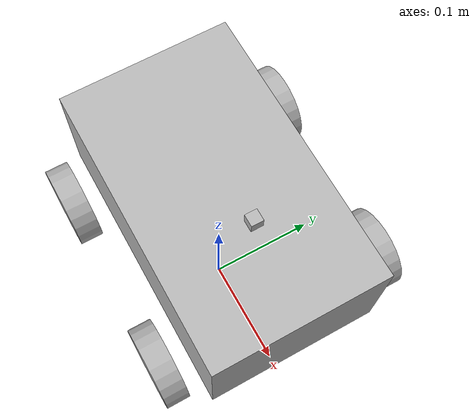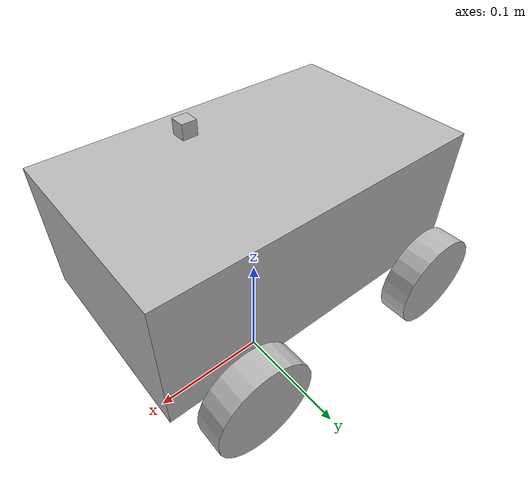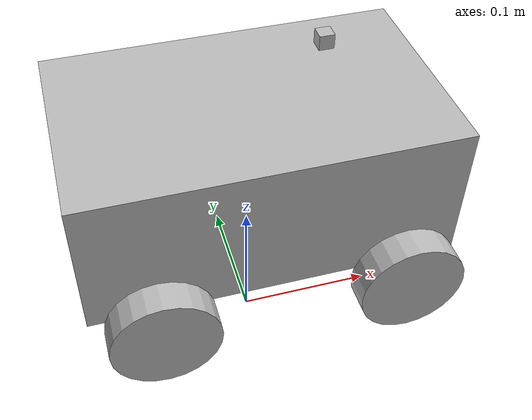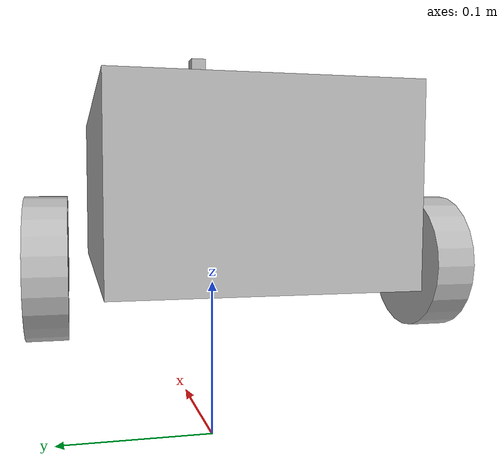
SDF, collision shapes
<?xml version="1.0" ?>
<sdf version="1.5">
  <model name="ugv_diff">

    <link name="base_link">
      <pose>0 0 0.16 0 0 0</pose>
      <gravity>1</gravity>
      <inertial>
        <mass>2</mass>
        <inertia>
          <ixx>0.028819942</ixx>
          <iyy>0.047333716</iyy>
          <izz>0.054201740</izz>
          <ixy>0</ixy>
          <ixz>0</ixz>
          <iyz>0</iyz>
        </inertia>
      </inertial>
      <collision name="collision">
        <pose>0 0 0 0 0 0</pose>
        <geometry>
          <box>
            <size>0.25 0.15 0.1</size>
          </box>
        </geometry>
      </collision>
      <visual name="visual">
        <pose>0.045 0 -0.05 1.57 0 0</pose>
        <geometry>
          <mesh>
            <uri>model://ugv_mac/meshes/body.dae</uri>
          </mesh>
        </geometry>
      </visual>
    </link>

    <link name="right_front_wheel">
      <pose>0.08 -0.1 0.12 1.57 0 0</pose>
      <gravity>1</gravity>
      <inertial>
        <mass>0.3844</mass>
        <inertia>
          <ixx>0.000324824</ixx>
          <iyy>0.000480000</iyy>
          <izz>0.000324824</izz>
          <ixy>0</ixy>
          <ixz>0</ixz>
          <iyz>0</iyz>
        </inertia>
      </inertial>
      <collision name='right_front_wheel_collision'>
        <pose>0 0 0 0 0 0</pose>
        <geometry>
          <cylinder>
            <length>0.02</length>
            <radius>0.035</radius>
          </cylinder>
        </geometry>
        <surface>
          <friction>
            <ode>
              <mu>0.05</mu>
              <mu2>0.05</mu2>
              <slip1>0.0</slip1>
              <slip2>0.0</slip2>
            </ode>
          </friction>
        </surface>
      </collision>
      <visual name="visual">
        <pose>-0.035 0.015 -0.1 3.14 0 0</pose>
        <geometry>
          <mesh>
            <uri>model://ugv_mac/meshes/front.dae</uri>
          </mesh>
        </geometry>
      </visual>
    </link>

    <link name="right_after_wheel">
      <pose>-0.08 -0.1 0.12 1.57 0 0</pose>
      <gravity>1</gravity>
      <inertial>
        <mass>0.3844</mass>
        <inertia>
          <ixx>0.000324824</ixx>
          <iyy>0.000480000</iyy>
          <izz>0.000324824</izz>
          <ixy>0</ixy>
          <ixz>0</ixz>
          <iyz>0</iyz>
        </inertia>
      </inertial>
      <collision name='right_after_wheel_collision'>
        <pose>0 0 0 0 0 0</pose>
        <geometry>
          <cylinder>
            <length>0.02</length>
            <radius>0.035</radius>
          </cylinder>
        </geometry>
        <surface>
          <friction>
            <ode>
              <mu>0.05</mu>
              <mu2>0.05</mu2>
              <slip1>0.0</slip1>
              <slip2>0.0</slip2>
            </ode>
          </friction>
        </surface>
      </collision>
      <visual name="visual">
        <pose>-0.035 0.015 -0.1 3.14 0 0</pose>
        <geometry>
          <mesh>
            <uri>model://ugv_mac/meshes/front.dae</uri>
          </mesh>
        </geometry>
      </visual>
    </link>

    <link name="left_front_wheel">
      <pose>0.08 0.1 0.12 1.57 0 0</pose>
      <gravity>1</gravity>
      <inertial>
        <mass>0.3844</mass>
        <inertia>
          <ixx>0.000324824</ixx>
          <iyy>0.000480000</iyy>
          <izz>0.000324824</izz>
          <ixy>0</ixy>
          <ixz>0</ixz>
          <iyz>0</iyz>
        </inertia>
      </inertial>
      <collision name='left_front_wheel_collision'>
        <pose>0 0 0 0 0 0</pose>
        <geometry>
          <cylinder>
            <length>0.02</length>
            <radius>0.035</radius>
          </cylinder>
        </geometry>
        <surface>
          <friction>
            <ode>
              <mu>0.05</mu>
              <mu2>0.05</mu2>
              <slip1>0.0</slip1>
              <slip2>0.0</slip2>
            </ode>
          </friction>
        </surface>
      </collision>
      <visual name="visual">
        <pose>-0.035 -0.015 0.1 0 0 0</pose>
        <geometry>
          <mesh>
            <uri>model://ugv_mac/meshes/front.dae</uri>
          </mesh>
        </geometry>
      </visual>
    </link>

    <link name="left_after_wheel">
      <pose>-0.08 0.1 0.12 1.57 0 0</pose>
      <gravity>1</gravity>
      <inertial>
        <mass>0.3844</mass>
        <inertia>
          <ixx>0.000324824</ixx>
          <iyy>0.000480000</iyy>
          <izz>0.000324824</izz>
          <ixy>0</ixy>
          <ixz>0</ixz>
          <iyz>0</iyz>
        </inertia>
      </inertial>
      <collision name='left_after_wheel_collision'>
        <pose>0 0 0 0 0 0</pose>
        <geometry>
          <cylinder>
            <length>0.02</length>
            <radius>0.035</radius>
          </cylinder>
        </geometry>
        <surface>
          <friction>
            <ode>
              <mu>0.05</mu>
              <mu2>0.05</mu2>
              <slip1>0.0</slip1>
              <slip2>0.0</slip2>
            </ode>
          </friction>
        </surface>
      </collision>
      <visual name="visual">
        <pose>-0.035 -0.015 0.1 0 0 0</pose>
        <geometry>
          <mesh>
            <uri>model://ugv_mac/meshes/front.dae</uri>
          </mesh>
        </geometry>
      </visual>
    </link>

    <joint type="revolute" name="right_front_wheel_joint">
      <child>right_front_wheel</child>
      <parent>base_link</parent>
      <axis>
        <xyz>0 1 0</xyz>
        <limit>
          <lower>-1e+16</lower>
          <upper>1e+16</upper>
        </limit>
        <dynamics>
          <spring_reference>0</spring_reference>
          <spring_stiffness>0</spring_stiffness>
        </dynamics>
        <use_parent_model_frame>1</use_parent_model_frame>
      </axis>
    </joint>

    <joint type="revolute" name="right_after_wheel_joint">
      <child>right_after_wheel</child>
      <parent>base_link</parent>
      <axis>
        <xyz>0 1 0</xyz>
        <limit>
          <lower>-1e+16</lower>
          <upper>1e+16</upper>
        </limit>
        <dynamics>
          <spring_reference>0</spring_reference>
          <spring_stiffness>0</spring_stiffness>
        </dynamics>
        <use_parent_model_frame>1</use_parent_model_frame>
      </axis>
    </joint>

    <joint type="revolute" name="left_front_wheel_joint">
      <child>left_front_wheel</child>
      <parent>base_link</parent>
      <axis>
        <xyz>0 1 0</xyz>
        <limit>
          <lower>-1e+16</lower>
          <upper>1e+16</upper>
        </limit>
        <dynamics>
          <spring_reference>0</spring_reference>
          <spring_stiffness>0</spring_stiffness>
        </dynamics>
        <use_parent_model_frame>1</use_parent_model_frame>
      </axis>
    </joint>

    <joint type="revolute" name="left_after_wheel_joint">
      <child>left_after_wheel</child>
      <parent>base_link</parent>
      <axis>
        <xyz>0 1 0</xyz>
        <limit>
          <lower>-1e+16</lower>
          <upper>1e+16</upper>
        </limit>
        <dynamics>
          <spring_reference>0</spring_reference>
          <spring_stiffness>0</spring_stiffness>
        </dynamics>
        <use_parent_model_frame>1</use_parent_model_frame>
      </axis>
    </joint>

  <plugin name="skid_steer_drive_controller" filename="libgazebo_ros_skid_steer_drive.so">
      <alwaysOn>true</alwaysOn>
      <updateRate>100.0</updateRate>
      <leftFrontJoint>left_front_wheel_joint</leftFrontJoint>
      <rightFrontJoint>right_front_wheel_joint</rightFrontJoint>
      <leftRearJoint>left_after_wheel_joint</leftRearJoint>
      <rightRearJoint>right_after_wheel_joint</rightRearJoint>
      <wheelSeparation>0.2</wheelSeparation>
      <wheelDiameter>0.07</wheelDiameter>
      <torque>50</torque>
      <commandTopic>cmd_vel</commandTopic>
      <!-- 当机器人未收到新的速度指令（如cmd_vel话题消息）的时间超过cmdTimeout设定的阈值时，插件会自动将机器人的线速度和角速度置零，使其停止运动 -->
      <cmdTimeout>0.2</cmdTimeout>
      <odometryTopic>odom</odometryTopic>
      <odometryFrame>world</odometryFrame>
      <robotBaseFrame>base_link</robotBaseFrame>
      <broadcastTF>0</broadcastTF>
      <covariance_x>0.0000</covariance_x>
      <covariance_y>0.000</covariance_y>
      <covariance_yaw>0.000</covariance_yaw>
      <wheelSlip>
        <slip1>0.001</slip1>  <!-- 纵向滑移 -->
        <slip2>0.001</slip2>  <!-- 横向滑移 -->
      </wheelSlip>
    </plugin>

    <include>
      <uri>model://camera</uri>
      <pose>0.05 0 0.245 0 0 0</pose>
    </include>

    <!-- 前视相机关节 -->
    <joint name="Monocular_front_joint" type="fixed">
      <child>camera::Monocular_front_link</child>
      <parent>base_link</parent>
      <axis>
        <xyz>0 0 1</xyz>
        <limit>
          <upper>0</upper>
          <lower>0</lower>
        </limit>
      </axis>
    </joint>

  </model>
</sdf>

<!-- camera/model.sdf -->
<sdf version='1.6'>
  <model name='camera'>
    <!-- 前视相机 -->
    <link name='Monocular_front_link'>
      <inertial>
        <mass>0.001</mass>
        <inertia>
          <ixx>1e-6</ixx>
          <ixy>0</ixy>
          <ixz>0</ixz>
          <iyy>1e-6</iyy>
          <iyz>0</iyz>
          <izz>1e-6</izz>
        </inertia>
      </inertial>
      <visual name='visual'>
        <geometry>
          <box>
            <size>0.01 0.01 0.01</size>
          </box>
        </geometry>
      </visual>
      <collision name='collision'>
        <pose frame=''>0 0 0 0 0 0</pose>
        <geometry>
          <box>
						<size>0.01 0.01 0.01</size>
          </box>
        </geometry>
      </collision>

      <!--传感器标签，定义一个名叫camera的传感器，它的类型是camera-->
      <sensor name='camera' type='camera'>
        <camera name='__default__'>
          <!--定义水平视野场，此处为71度-->
          <horizontal_fov>1.239</horizontal_fov>
          <!--image标签，功能是定义以像素为单位的图片大小和图片格式-->
          <image>
            <width>640</width>
            <height>480</height>
          </image>
          <!--定义远、近剪裁面，不会渲染远、近剪裁平面之外的对象-->
          <clip>
            <near>0.1</near>
            <far>100</far>
          </clip>
          <!--噪音标签，定义噪音模型，它将应用到生成的图片上-->
          <noise>
            <type>gaussian</type>
            <mean>0.0</mean>
            <stddev>0.001</stddev>
          </noise>
        </camera>

        <!--bool值，定义传感器是否更新，1为true,即传感器会根据update_rate参数定义的频率更新-->
        <always_on>1</always_on>
         <!--更新频率参数，默认值为0-->
        <update_rate>10</update_rate>
        <!--传感器可视化参数，bool变量，1即为true,表示允许传感器在图形界面被观察到-->
        <visualize>0</visualize>

        <plugin name='camera_plugin' filename='libgazebo_ros_camera.so'>
            <robotNamespace></robotNamespace>
            <alwaysOn>true</alwaysOn>
            <imageTopicName>image_raw</imageTopicName>
            <cameraInfoTopicName>camera_info</cameraInfoTopicName>
            <updateRate>10.0</updateRate>
            <cameraName>camera</cameraName>
            <frameName>/camera_link</frameName>
            <CxPrime>320</CxPrime>
            <Cx>320</Cx>
            <Cy>240</Cy>
            <hackBaseline>0</hackBaseline>
            <focalLength>448.710659</focalLength>
            <distortionK1>0.0</distortionK1>
            <distortionK2>0.0</distortionK2>
            <distortionK3>0.0</distortionK3>
            <distortionT1>0.0</distortionT1>
            <distortionT2>0.0</distortionT2>
        </plugin>
      </sensor>
      <self_collide>0</self_collide>
      <kinematic>0</kinematic>
    </link>
  </model>
</sdf>
